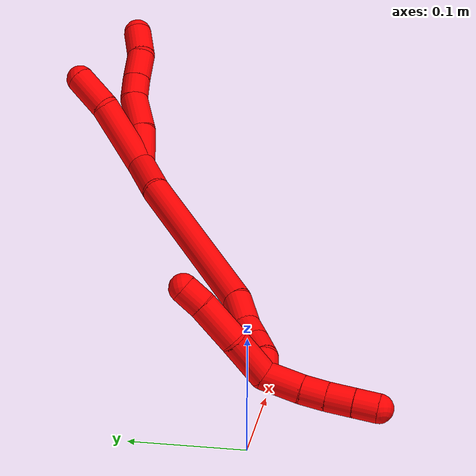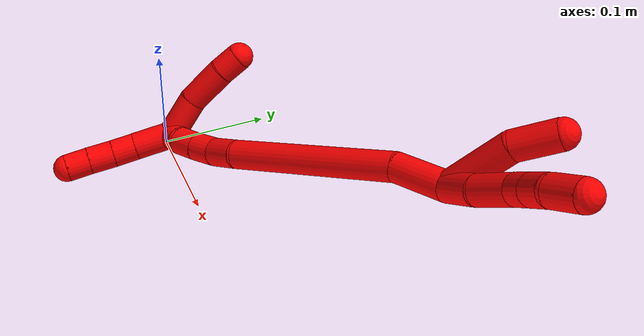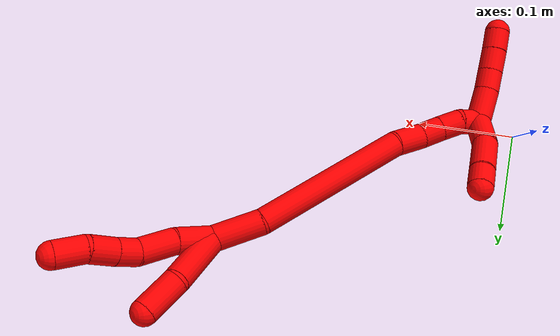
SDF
<sdf version="1.7">
 <world name="default">
  <model name="2">
   <static>0</static>
   <link name="2">
    <collision name="collision-cylinder-e_1_2_8">
     <pose>0.001226 -0.004109 0.018248 0.22151 0.065474 0.007284</pose>
     <geometry><cylinder><radius>0.0125</radius><length>0.03749</length></cylinder></geometry>
     <surface>
      <friction><ode><mu>1.16</mu><mu2>1.16</mu2><slip1>0</slip1><slip2>0</slip2></ode></friction>
      <contact><ode><kp>1e+06</kp><kd>1</kd><max_vel>0</max_vel><min_depth>0.001</min_depth></ode></contact>
     </surface>
    </collision>
    <visual name="visual-cylinder-e_1_2_8">
     <pose>0.001226 -0.004109 0.018248 0.22151 0.065474 0.007284</pose>
     <geometry><cylinder><radius>0.0125</radius><length>0.03749</length></cylinder></geometry>
     <material><ambient>1 0 0 1</ambient></material>
    </visual>
    <collision name="collision-cylinder-e_2_8_9">
     <pose>0.005566 -0.008745 0.054412 0.029361 0.171961 0.002531</pose>
     <geometry><cylinder><radius>0.0125</radius><length>0.036385</length></cylinder></geometry>
     <surface>
      <friction><ode><mu>1.16</mu><mu2>1.16</mu2><slip1>0</slip1><slip2>0</slip2></ode></friction>
      <contact><ode><kp>1e+06</kp><kd>1</kd><max_vel>0</max_vel><min_depth>0.001</min_depth></ode></contact>
     </surface>
    </collision>
    <visual name="visual-cylinder-e_2_8_9">
     <pose>0.005566 -0.008745 0.054412 0.029361 0.171961 0.002531</pose>
     <geometry><cylinder><radius>0.0125</radius><length>0.036385</length></cylinder></geometry>
     <material><ambient>1 0 0 1</ambient></material>
    </visual>
    <collision name="collision-cylinder-e_3_9_10">
     <pose>0.008095 -0.011864 0.082576 0.247822 -0.055171 -0.006873</pose>
     <geometry><cylinder><radius>0.0125</radius><length>0.021173</length></cylinder></geometry>
     <surface>
      <friction><ode><mu>1.16</mu><mu2>1.16</mu2><slip1>0</slip1><slip2>0</slip2></ode></friction>
      <contact><ode><kp>1e+06</kp><kd>1</kd><max_vel>0</max_vel><min_depth>0.001</min_depth></ode></contact>
     </surface>
    </collision>
    <visual name="visual-cylinder-e_3_9_10">
     <pose>0.008095 -0.011864 0.082576 0.247822 -0.055171 -0.006873</pose>
     <geometry><cylinder><radius>0.0125</radius><length>0.021173</length></cylinder></geometry>
     <material><ambient>1 0 0 1</ambient></material>
    </visual>
    <collision name="collision-cylinder-e_4_10_11">
     <pose>0.006132 -0.018159 0.105209 0.290406 -0.106309 -0.01556</pose>
     <geometry><cylinder><radius>0.0125</radius><length>0.026</length></cylinder></geometry>
     <surface>
      <friction><ode><mu>1.16</mu><mu2>1.16</mu2><slip1>0</slip1><slip2>0</slip2></ode></friction>
      <contact><ode><kp>1e+06</kp><kd>1</kd><max_vel>0</max_vel><min_depth>0.001</min_depth></ode></contact>
     </surface>
    </collision>
    <visual name="visual-cylinder-e_4_10_11">
     <pose>0.006132 -0.018159 0.105209 0.290406 -0.106309 -0.01556</pose>
     <geometry><cylinder><radius>0.0125</radius><length>0.026</length></cylinder></geometry>
     <material><ambient>1 0 0 1</ambient></material>
    </visual>
    <collision name="collision-cylinder-e_5_11_6">
     <pose>0.007807 -0.024048 0.131574 0.155231 0.21263 0.016599</pose>
     <geometry><cylinder><radius>0.0125</radius><length>0.028951</length></cylinder></geometry>
     <surface>
      <friction><ode><mu>1.16</mu><mu2>1.16</mu2><slip1>0</slip1><slip2>0</slip2></ode></friction>
      <contact><ode><kp>1e+06</kp><kd>1</kd><max_vel>0</max_vel><min_depth>0.001</min_depth></ode></contact>
     </surface>
    </collision>
    <visual name="visual-cylinder-e_5_11_6">
     <pose>0.007807 -0.024048 0.131574 0.155231 0.21263 0.016599</pose>
     <geometry><cylinder><radius>0.0125</radius><length>0.028951</length></cylinder></geometry>
     <material><ambient>1 0 0 1</ambient></material>
    </visual>
    <collision name="collision-cylinder-e_1_2_12">
     <pose>0.000409 0.014295 0.027411 -0.480721 0.013228 -0.003242</pose>
     <geometry><cylinder><radius>0.0125</radius><length>0.061834</length></cylinder></geometry>
     <surface>
      <friction><ode><mu>1.16</mu><mu2>1.16</mu2><slip1>0</slip1><slip2>0</slip2></ode></friction>
      <contact><ode><kp>1e+06</kp><kd>1</kd><max_vel>0</max_vel><min_depth>0.001</min_depth></ode></contact>
     </surface>
    </collision>
    <visual name="visual-cylinder-e_1_2_12">
     <pose>0.000409 0.014295 0.027411 -0.480721 0.013228 -0.003242</pose>
     <geometry><cylinder><radius>0.0125</radius><length>0.061834</length></cylinder></geometry>
     <material><ambient>1 0 0 1</ambient></material>
    </visual>
    <collision name="collision-cylinder-e_2_12_5">
     <pose>0.007098 0.035486 0.07147 -0.392677 0.335332 -0.067305</pose>
     <geometry><cylinder><radius>0.0125</radius><length>0.038166</length></cylinder></geometry>
     <surface>
      <friction><ode><mu>1.16</mu><mu2>1.16</mu2><slip1>0</slip1><slip2>0</slip2></ode></friction>
      <contact><ode><kp>1e+06</kp><kd>1</kd><max_vel>0</max_vel><min_depth>0.001</min_depth></ode></contact>
     </surface>
    </collision>
    <visual name="visual-cylinder-e_2_12_5">
     <pose>0.007098 0.035486 0.07147 -0.392677 0.335332 -0.067305</pose>
     <geometry><cylinder><radius>0.0125</radius><length>0.038166</length></cylinder></geometry>
     <material><ambient>1 0 0 1</ambient></material>
    </visual>
    <collision name="collision-cylinder-e_1_2_13">
     <pose>-0.013282 0.003238 -0.020044 -2.98145 -0.579305 2.61559</pose>
     <geometry><cylinder><radius>0.0125</radius><length>0.048524</length></cylinder></geometry>
     <surface>
      <friction><ode><mu>1.16</mu><mu2>1.16</mu2><slip1>0</slip1><slip2>0</slip2></ode></friction>
      <contact><ode><kp>1e+06</kp><kd>1</kd><max_vel>0</max_vel><min_depth>0.001</min_depth></ode></contact>
     </surface>
    </collision>
    <visual name="visual-cylinder-e_1_2_13">
     <pose>-0.013282 0.003238 -0.020044 -2.98145 -0.579305 2.61559</pose>
     <geometry><cylinder><radius>0.0125</radius><length>0.048524</length></cylinder></geometry>
     <material><ambient>1 0 0 1</ambient></material>
    </visual>
    <collision name="collision-cylinder-e_2_13_14">
     <pose>-0.062641 -0.001227 -0.108464 3.02942 -0.482903 -2.69325</pose>
     <geometry><cylinder><radius>0.0125</radius><length>0.155385</length></cylinder></geometry>
     <surface>
      <friction><ode><mu>1.16</mu><mu2>1.16</mu2><slip1>0</slip1><slip2>0</slip2></ode></friction>
      <contact><ode><kp>1e+06</kp><kd>1</kd><max_vel>0</max_vel><min_depth>0.001</min_depth></ode></contact>
     </surface>
    </collision>
    <visual name="visual-cylinder-e_2_13_14">
     <pose>-0.062641 -0.001227 -0.108464 3.02942 -0.482903 -2.69325</pose>
     <geometry><cylinder><radius>0.0125</radius><length>0.155385</length></cylinder></geometry>
     <material><ambient>1 0 0 1</ambient></material>
    </visual>
    <collision name="collision-cylinder-e_3_14_15">
     <pose>-0.103206 -0.007977 -0.191302 -3.0758 -0.300311 2.71326</pose>
     <geometry><cylinder><radius>0.0125</radius><length>0.030346</length></cylinder></geometry>
     <surface>
      <friction><ode><mu>1.16</mu><mu2>1.16</mu2><slip1>0</slip1><slip2>0</slip2></ode></friction>
      <contact><ode><kp>1e+06</kp><kd>1</kd><max_vel>0</max_vel><min_depth>0.001</min_depth></ode></contact>
     </surface>
    </collision>
    <visual name="visual-cylinder-e_3_14_15">
     <pose>-0.103206 -0.007977 -0.191302 -3.0758 -0.300311 2.71326</pose>
     <geometry><cylinder><radius>0.0125</radius><length>0.030346</length></cylinder></geometry>
     <material><ambient>1 0 0 1</ambient></material>
    </visual>
    <collision name="collision-cylinder-e_4_15_16">
     <pose>-0.113189 -0.006294 -0.21539 -3.06586 -0.517506 2.85727</pose>
     <geometry><cylinder><radius>0.0125</radius><length>0.022215</length></cylinder></geometry>
     <surface>
      <friction><ode><mu>1.16</mu><mu2>1.16</mu2><slip1>0</slip1><slip2>0</slip2></ode></friction>
      <contact><ode><kp>1e+06</kp><kd>1</kd><max_vel>0</max_vel><min_depth>0.001</min_depth></ode></contact>
     </surface>
    </collision>
    <visual name="visual-cylinder-e_4_15_16">
     <pose>-0.113189 -0.006294 -0.21539 -3.06586 -0.517506 2.85727</pose>
     <geometry><cylinder><radius>0.0125</radius><length>0.022215</length></cylinder></geometry>
     <material><ambient>1 0 0 1</ambient></material>
    </visual>
    <collision name="collision-cylinder-e_5_16_17">
     <pose>-0.124455 -0.004336 -0.234627 -3.0146 -0.537108 2.68747</pose>
     <geometry><cylinder><radius>0.0125</radius><length>0.022557</length></cylinder></geometry>
     <surface>
      <friction><ode><mu>1.16</mu><mu2>1.16</mu2><slip1>0</slip1><slip2>0</slip2></ode></friction>
      <contact><ode><kp>1e+06</kp><kd>1</kd><max_vel>0</max_vel><min_depth>0.001</min_depth></ode></contact>
     </surface>
    </collision>
    <visual name="visual-cylinder-e_5_16_17">
     <pose>-0.124455 -0.004336 -0.234627 -3.0146 -0.537108 2.68747</pose>
     <geometry><cylinder><radius>0.0125</radius><length>0.022557</length></cylinder></geometry>
     <material><ambient>1 0 0 1</ambient></material>
    </visual>
    <collision name="collision-cylinder-e_6_17_1">
     <pose>-0.132996 0.000472 -0.253698 -2.77965 -0.267397 1.26777</pose>
     <geometry><cylinder><radius>0.0125</radius><length>0.020973</length></cylinder></geometry>
     <surface>
      <friction><ode><mu>1.16</mu><mu2>1.16</mu2><slip1>0</slip1><slip2>0</slip2></ode></friction>
      <contact><ode><kp>1e+06</kp><kd>1</kd><max_vel>0</max_vel><min_depth>0.001</min_depth></ode></contact>
     </surface>
    </collision>
    <visual name="visual-cylinder-e_6_17_1">
     <pose>-0.132996 0.000472 -0.253698 -2.77965 -0.267397 1.26777</pose>
     <geometry><cylinder><radius>0.0125</radius><length>0.020973</length></cylinder></geometry>
     <material><ambient>1 0 0 1</ambient></material>
    </visual>
    <collision name="collision-cylinder-e_1_1_18">
     <pose>-0.144249 -0.00793 -0.272246 2.21967 -0.51348 -0.972555</pose>
     <geometry><cylinder><radius>0.0125</radius><length>0.034535</length></cylinder></geometry>
     <surface>
      <friction><ode><mu>1.16</mu><mu2>1.16</mu2><slip1>0</slip1><slip2>0</slip2></ode></friction>
      <contact><ode><kp>1e+06</kp><kd>1</kd><max_vel>0</max_vel><min_depth>0.001</min_depth></ode></contact>
     </surface>
    </collision>
    <visual name="visual-cylinder-e_1_1_18">
     <pose>-0.144249 -0.00793 -0.272246 2.21967 -0.51348 -0.972555</pose>
     <geometry><cylinder><radius>0.0125</radius><length>0.034535</length></cylinder></geometry>
     <material><ambient>1 0 0 1</ambient></material>
    </visual>
    <collision name="collision-cylinder-e_2_18_19">
     <pose>-0.158117 -0.027788 -0.286094 2.1145 -0.529623 -0.896332</pose>
     <geometry><cylinder><radius>0.0125</radius><length>0.021322</length></cylinder></geometry>
     <surface>
      <friction><ode><mu>1.16</mu><mu2>1.16</mu2><slip1>0</slip1><slip2>0</slip2></ode></friction>
      <contact><ode><kp>1e+06</kp><kd>1</kd><max_vel>0</max_vel><min_depth>0.001</min_depth></ode></contact>
     </surface>
    </collision>
    <visual name="visual-cylinder-e_2_18_19">
     <pose>-0.158117 -0.027788 -0.286094 2.1145 -0.529623 -0.896332</pose>
     <geometry><cylinder><radius>0.0125</radius><length>0.021322</length></cylinder></geometry>
     <material><ambient>1 0 0 1</ambient></material>
    </visual>
    <collision name="collision-cylinder-e_3_19_20">
     <pose>-0.169741 -0.044109 -0.295548 2.07797 -0.573147 -0.928679</pose>
     <geometry><cylinder><radius>0.0125</radius><length>0.023003</length></cylinder></geometry>
     <surface>
      <friction><ode><mu>1.16</mu><mu2>1.16</mu2><slip1>0</slip1><slip2>0</slip2></ode></friction>
      <contact><ode><kp>1e+06</kp><kd>1</kd><max_vel>0</max_vel><min_depth>0.001</min_depth></ode></contact>
     </surface>
    </collision>
    <visual name="visual-cylinder-e_3_19_20">
     <pose>-0.169741 -0.044109 -0.295548 2.07797 -0.573147 -0.928679</pose>
     <geometry><cylinder><radius>0.0125</radius><length>0.023003</length></cylinder></geometry>
     <material><ambient>1 0 0 1</ambient></material>
    </visual>
    <collision name="collision-cylinder-e_4_20_4">
     <pose>-0.181459 -0.060557 -0.304443 2.05433 -0.545165 -0.866444</pose>
     <geometry><cylinder><radius>0.0125</radius><length>0.02114</length></cylinder></geometry>
     <surface>
      <friction><ode><mu>1.16</mu><mu2>1.16</mu2><slip1>0</slip1><slip2>0</slip2></ode></friction>
      <contact><ode><kp>1e+06</kp><kd>1</kd><max_vel>0</max_vel><min_depth>0.001</min_depth></ode></contact>
     </surface>
    </collision>
    <visual name="visual-cylinder-e_4_20_4">
     <pose>-0.181459 -0.060557 -0.304443 2.05433 -0.545165 -0.866444</pose>
     <geometry><cylinder><radius>0.0125</radius><length>0.02114</length></cylinder></geometry>
     <material><ambient>1 0 0 1</ambient></material>
    </visual>
    <collision name="collision-cylinder-e_1_1_21">
     <pose>-0.139848 0.018902 -0.250678 -0.871882 -0.20738 0.096876</pose>
     <geometry><cylinder><radius>0.0125</radius><length>0.039641</length></cylinder></geometry>
     <surface>
      <friction><ode><mu>1.16</mu><mu2>1.16</mu2><slip1>0</slip1><slip2>0</slip2></ode></friction>
      <contact><ode><kp>1e+06</kp><kd>1</kd><max_vel>0</max_vel><min_depth>0.001</min_depth></ode></contact>
     </surface>
    </collision>
    <visual name="visual-cylinder-e_1_1_21">
     <pose>-0.139848 0.018902 -0.250678 -0.871882 -0.20738 0.096876</pose>
     <geometry><cylinder><radius>0.0125</radius><length>0.039641</length></cylinder></geometry>
     <material><ambient>1 0 0 1</ambient></material>
    </visual>
    <collision name="collision-cylinder-e_2_21_22">
     <pose>-0.144131 0.046752 -0.223516 -0.724736 -0.010312 0.003909</pose>
     <geometry><cylinder><radius>0.0125</radius><length>0.039226</length></cylinder></geometry>
     <surface>
      <friction><ode><mu>1.16</mu><mu2>1.16</mu2><slip1>0</slip1><slip2>0</slip2></ode></friction>
      <contact><ode><kp>1e+06</kp><kd>1</kd><max_vel>0</max_vel><min_depth>0.001</min_depth></ode></contact>
     </surface>
    </collision>
    <visual name="visual-cylinder-e_2_21_22">
     <pose>-0.144131 0.046752 -0.223516 -0.724736 -0.010312 0.003909</pose>
     <geometry><cylinder><radius>0.0125</radius><length>0.039226</length></cylinder></geometry>
     <material><ambient>1 0 0 1</ambient></material>
    </visual>
    <collision name="collision-cylinder-e_3_22_3">
     <pose>-0.143367 0.06721 -0.201409 -0.787637 0.091628 -0.038096</pose>
     <geometry><cylinder><radius>0.0125</radius><length>0.021133</length></cylinder></geometry>
     <surface>
      <friction><ode><mu>1.16</mu><mu2>1.16</mu2><slip1>0</slip1><slip2>0</slip2></ode></friction>
      <contact><ode><kp>1e+06</kp><kd>1</kd><max_vel>0</max_vel><min_depth>0.001</min_depth></ode></contact>
     </surface>
    </collision>
    <visual name="visual-cylinder-e_3_22_3">
     <pose>-0.143367 0.06721 -0.201409 -0.787637 0.091628 -0.038096</pose>
     <geometry><cylinder><radius>0.0125</radius><length>0.021133</length></cylinder></geometry>
     <material><ambient>1 0 0 1</ambient></material>
    </visual>
    <collision name="collision-sphere-3">
     <pose>-0.1424 0.074667 -0.193986 0 -0 0</pose>
     <geometry><sphere><radius>0.0125</radius></sphere></geometry>
     <surface>
      <friction><ode><mu>1.16</mu><mu2>1.16</mu2><slip1>0</slip1><slip2>0</slip2></ode></friction>
      <contact><ode><kp>1e+06</kp><kd>1</kd><max_vel>0</max_vel><min_depth>0.001</min_depth></ode></contact>
     </surface>
    </collision>
    <visual name="visual-sphere-3">
     <pose>-0.1424 0.074667 -0.193986 0 -0 0</pose>
     <geometry><sphere><radius>0.0125</radius></sphere></geometry>
     <material><ambient>1 0 0 1</ambient></material>
    </visual>
    <collision name="collision-sphere-22">
     <pose>-0.144334 0.059753 -0.208833 0 -0 0</pose>
     <geometry><sphere><radius>0.0125</radius></sphere></geometry>
     <surface>
      <friction><ode><mu>1.16</mu><mu2>1.16</mu2><slip1>0</slip1><slip2>0</slip2></ode></friction>
      <contact><ode><kp>1e+06</kp><kd>1</kd><max_vel>0</max_vel><min_depth>0.001</min_depth></ode></contact>
     </surface>
    </collision>
    <visual name="visual-sphere-22">
     <pose>-0.144334 0.059753 -0.208833 0 -0 0</pose>
     <geometry><sphere><radius>0.0125</radius></sphere></geometry>
     <material><ambient>1 0 0 1</ambient></material>
    </visual>
    <collision name="collision-sphere-21">
     <pose>-0.143929 0.03375 -0.238199 0 -0 0</pose>
     <geometry><sphere><radius>0.0125</radius></sphere></geometry>
     <surface>
      <friction><ode><mu>1.16</mu><mu2>1.16</mu2><slip1>0</slip1><slip2>0</slip2></ode></friction>
      <contact><ode><kp>1e+06</kp><kd>1</kd><max_vel>0</max_vel><min_depth>0.001</min_depth></ode></contact>
     </surface>
    </collision>
    <visual name="visual-sphere-21">
     <pose>-0.143929 0.03375 -0.238199 0 -0 0</pose>
     <geometry><sphere><radius>0.0125</radius></sphere></geometry>
     <material><ambient>1 0 0 1</ambient></material>
    </visual>
    <collision name="collision-sphere-4">
     <pose>-0.18694 -0.068559 -0.308645 0 -0 0</pose>
     <geometry><sphere><radius>0.0125</radius></sphere></geometry>
     <surface>
      <friction><ode><mu>1.16</mu><mu2>1.16</mu2><slip1>0</slip1><slip2>0</slip2></ode></friction>
      <contact><ode><kp>1e+06</kp><kd>1</kd><max_vel>0</max_vel><min_depth>0.001</min_depth></ode></contact>
     </surface>
    </collision>
    <visual name="visual-sphere-4">
     <pose>-0.18694 -0.068559 -0.308645 0 -0 0</pose>
     <geometry><sphere><radius>0.0125</radius></sphere></geometry>
     <material><ambient>1 0 0 1</ambient></material>
    </visual>
    <collision name="collision-sphere-20">
     <pose>-0.175977 -0.052556 -0.300241 0 -0 0</pose>
     <geometry><sphere><radius>0.0125</radius></sphere></geometry>
     <surface>
      <friction><ode><mu>1.16</mu><mu2>1.16</mu2><slip1>0</slip1><slip2>0</slip2></ode></friction>
      <contact><ode><kp>1e+06</kp><kd>1</kd><max_vel>0</max_vel><min_depth>0.001</min_depth></ode></contact>
     </surface>
    </collision>
    <visual name="visual-sphere-20">
     <pose>-0.175977 -0.052556 -0.300241 0 -0 0</pose>
     <geometry><sphere><radius>0.0125</radius></sphere></geometry>
     <material><ambient>1 0 0 1</ambient></material>
    </visual>
    <collision name="collision-sphere-6">
     <pose>0.010862 -0.026235 0.145554 0 -0 0</pose>
     <geometry><sphere><radius>0.0125</radius></sphere></geometry>
     <surface>
      <friction><ode><mu>1.16</mu><mu2>1.16</mu2><slip1>0</slip1><slip2>0</slip2></ode></friction>
      <contact><ode><kp>1e+06</kp><kd>1</kd><max_vel>0</max_vel><min_depth>0.001</min_depth></ode></contact>
     </surface>
    </collision>
    <visual name="visual-sphere-6">
     <pose>0.010862 -0.026235 0.145554 0 -0 0</pose>
     <geometry><sphere><radius>0.0125</radius></sphere></geometry>
     <material><ambient>1 0 0 1</ambient></material>
    </visual>
    <collision name="collision-sphere-11">
     <pose>0.004752 -0.02186 0.117595 0 -0 0</pose>
     <geometry><sphere><radius>0.0125</radius></sphere></geometry>
     <surface>
      <friction><ode><mu>1.16</mu><mu2>1.16</mu2><slip1>0</slip1><slip2>0</slip2></ode></friction>
      <contact><ode><kp>1e+06</kp><kd>1</kd><max_vel>0</max_vel><min_depth>0.001</min_depth></ode></contact>
     </surface>
    </collision>
    <visual name="visual-sphere-11">
     <pose>0.004752 -0.02186 0.117595 0 -0 0</pose>
     <geometry><sphere><radius>0.0125</radius></sphere></geometry>
     <material><ambient>1 0 0 1</ambient></material>
    </visual>
    <collision name="collision-sphere-10">
     <pose>0.007511 -0.014457 0.092824 0 -0 0</pose>
     <geometry><sphere><radius>0.0125</radius></sphere></geometry>
     <surface>
      <friction><ode><mu>1.16</mu><mu2>1.16</mu2><slip1>0</slip1><slip2>0</slip2></ode></friction>
      <contact><ode><kp>1e+06</kp><kd>1</kd><max_vel>0</max_vel><min_depth>0.001</min_depth></ode></contact>
     </surface>
    </collision>
    <visual name="visual-sphere-10">
     <pose>0.007511 -0.014457 0.092824 0 -0 0</pose>
     <geometry><sphere><radius>0.0125</radius></sphere></geometry>
     <material><ambient>1 0 0 1</ambient></material>
    </visual>
    <collision name="collision-sphere-9">
     <pose>0.008679 -0.009271 0.072328 0 -0 0</pose>
     <geometry><sphere><radius>0.0125</radius></sphere></geometry>
     <surface>
      <friction><ode><mu>1.16</mu><mu2>1.16</mu2><slip1>0</slip1><slip2>0</slip2></ode></friction>
      <contact><ode><kp>1e+06</kp><kd>1</kd><max_vel>0</max_vel><min_depth>0.001</min_depth></ode></contact>
     </surface>
    </collision>
    <visual name="visual-sphere-9">
     <pose>0.008679 -0.009271 0.072328 0 -0 0</pose>
     <geometry><sphere><radius>0.0125</radius></sphere></geometry>
     <material><ambient>1 0 0 1</ambient></material>
    </visual>
    <collision name="collision-sphere-2">
     <geometry><sphere><radius>0.0125</radius></sphere></geometry>
     <surface>
      <friction><ode><mu>1.16</mu><mu2>1.16</mu2><slip1>0</slip1><slip2>0</slip2></ode></friction>
      <contact><ode><kp>1e+06</kp><kd>1</kd><max_vel>0</max_vel><min_depth>0.001</min_depth></ode></contact>
     </surface>
    </collision>
    <visual name="visual-sphere-2">
     <geometry><sphere><radius>0.0125</radius></sphere></geometry>
     <material><ambient>1 0 0 1</ambient></material>
    </visual>
    <collision name="collision-sphere-19">
     <pose>-0.163504 -0.035662 -0.290854 0 -0 0</pose>
     <geometry><sphere><radius>0.0125</radius></sphere></geometry>
     <surface>
      <friction><ode><mu>1.16</mu><mu2>1.16</mu2><slip1>0</slip1><slip2>0</slip2></ode></friction>
      <contact><ode><kp>1e+06</kp><kd>1</kd><max_vel>0</max_vel><min_depth>0.001</min_depth></ode></contact>
     </surface>
    </collision>
    <visual name="visual-sphere-19">
     <pose>-0.163504 -0.035662 -0.290854 0 -0 0</pose>
     <geometry><sphere><radius>0.0125</radius></sphere></geometry>
     <material><ambient>1 0 0 1</ambient></material>
    </visual>
    <collision name="collision-sphere-8">
     <pose>0.002453 -0.008219 0.036495 0 -0 0</pose>
     <geometry><sphere><radius>0.0125</radius></sphere></geometry>
     <surface>
      <friction><ode><mu>1.16</mu><mu2>1.16</mu2><slip1>0</slip1><slip2>0</slip2></ode></friction>
      <contact><ode><kp>1e+06</kp><kd>1</kd><max_vel>0</max_vel><min_depth>0.001</min_depth></ode></contact>
     </surface>
    </collision>
    <visual name="visual-sphere-8">
     <pose>0.002453 -0.008219 0.036495 0 -0 0</pose>
     <geometry><sphere><radius>0.0125</radius></sphere></geometry>
     <material><ambient>1 0 0 1</ambient></material>
    </visual>
    <collision name="collision-sphere-12">
     <pose>0.000818 0.028591 0.054821 0 -0 0</pose>
     <geometry><sphere><radius>0.0125</radius></sphere></geometry>
     <surface>
      <friction><ode><mu>1.16</mu><mu2>1.16</mu2><slip1>0</slip1><slip2>0</slip2></ode></friction>
      <contact><ode><kp>1e+06</kp><kd>1</kd><max_vel>0</max_vel><min_depth>0.001</min_depth></ode></contact>
     </surface>
    </collision>
    <visual name="visual-sphere-12">
     <pose>0.000818 0.028591 0.054821 0 -0 0</pose>
     <geometry><sphere><radius>0.0125</radius></sphere></geometry>
     <material><ambient>1 0 0 1</ambient></material>
    </visual>
    <collision name="collision-sphere-5">
     <pose>0.013378 0.042382 0.088118 0 -0 0</pose>
     <geometry><sphere><radius>0.0125</radius></sphere></geometry>
     <surface>
      <friction><ode><mu>1.16</mu><mu2>1.16</mu2><slip1>0</slip1><slip2>0</slip2></ode></friction>
      <contact><ode><kp>1e+06</kp><kd>1</kd><max_vel>0</max_vel><min_depth>0.001</min_depth></ode></contact>
     </surface>
    </collision>
    <visual name="visual-sphere-5">
     <pose>0.013378 0.042382 0.088118 0 -0 0</pose>
     <geometry><sphere><radius>0.0125</radius></sphere></geometry>
     <material><ambient>1 0 0 1</ambient></material>
    </visual>
    <collision name="collision-sphere-13">
     <pose>-0.026564 0.006475 -0.040088 0 -0 0</pose>
     <geometry><sphere><radius>0.0125</radius></sphere></geometry>
     <surface>
      <friction><ode><mu>1.16</mu><mu2>1.16</mu2><slip1>0</slip1><slip2>0</slip2></ode></friction>
      <contact><ode><kp>1e+06</kp><kd>1</kd><max_vel>0</max_vel><min_depth>0.001</min_depth></ode></contact>
     </surface>
    </collision>
    <visual name="visual-sphere-13">
     <pose>-0.026564 0.006475 -0.040088 0 -0 0</pose>
     <geometry><sphere><radius>0.0125</radius></sphere></geometry>
     <material><ambient>1 0 0 1</ambient></material>
    </visual>
    <collision name="collision-sphere-14">
     <pose>-0.098718 -0.00893 -0.17684 0 -0 0</pose>
     <geometry><sphere><radius>0.0125</radius></sphere></geometry>
     <surface>
      <friction><ode><mu>1.16</mu><mu2>1.16</mu2><slip1>0</slip1><slip2>0</slip2></ode></friction>
      <contact><ode><kp>1e+06</kp><kd>1</kd><max_vel>0</max_vel><min_depth>0.001</min_depth></ode></contact>
     </surface>
    </collision>
    <visual name="visual-sphere-14">
     <pose>-0.098718 -0.00893 -0.17684 0 -0 0</pose>
     <geometry><sphere><radius>0.0125</radius></sphere></geometry>
     <material><ambient>1 0 0 1</ambient></material>
    </visual>
    <collision name="collision-sphere-15">
     <pose>-0.107694 -0.007024 -0.205765 0 -0 0</pose>
     <geometry><sphere><radius>0.0125</radius></sphere></geometry>
     <surface>
      <friction><ode><mu>1.16</mu><mu2>1.16</mu2><slip1>0</slip1><slip2>0</slip2></ode></friction>
      <contact><ode><kp>1e+06</kp><kd>1</kd><max_vel>0</max_vel><min_depth>0.001</min_depth></ode></contact>
     </surface>
    </collision>
    <visual name="visual-sphere-15">
     <pose>-0.107694 -0.007024 -0.205765 0 -0 0</pose>
     <geometry><sphere><radius>0.0125</radius></sphere></geometry>
     <material><ambient>1 0 0 1</ambient></material>
    </visual>
    <collision name="collision-sphere-16">
     <pose>-0.118685 -0.005564 -0.225015 0 -0 0</pose>
     <geometry><sphere><radius>0.0125</radius></sphere></geometry>
     <surface>
      <friction><ode><mu>1.16</mu><mu2>1.16</mu2><slip1>0</slip1><slip2>0</slip2></ode></friction>
      <contact><ode><kp>1e+06</kp><kd>1</kd><max_vel>0</max_vel><min_depth>0.001</min_depth></ode></contact>
     </surface>
    </collision>
    <visual name="visual-sphere-16">
     <pose>-0.118685 -0.005564 -0.225015 0 -0 0</pose>
     <geometry><sphere><radius>0.0125</radius></sphere></geometry>
     <material><ambient>1 0 0 1</ambient></material>
    </visual>
    <collision name="collision-sphere-17">
     <pose>-0.130226 -0.003109 -0.24424 0 -0 0</pose>
     <geometry><sphere><radius>0.0125</radius></sphere></geometry>
     <surface>
      <friction><ode><mu>1.16</mu><mu2>1.16</mu2><slip1>0</slip1><slip2>0</slip2></ode></friction>
      <contact><ode><kp>1e+06</kp><kd>1</kd><max_vel>0</max_vel><min_depth>0.001</min_depth></ode></contact>
     </surface>
    </collision>
    <visual name="visual-sphere-17">
     <pose>-0.130226 -0.003109 -0.24424 0 -0 0</pose>
     <geometry><sphere><radius>0.0125</radius></sphere></geometry>
     <material><ambient>1 0 0 1</ambient></material>
    </visual>
    <collision name="collision-sphere-1">
     <pose>-0.135767 0.004054 -0.263157 0 -0 0</pose>
     <geometry><sphere><radius>0.0125</radius></sphere></geometry>
     <surface>
      <friction><ode><mu>1.16</mu><mu2>1.16</mu2><slip1>0</slip1><slip2>0</slip2></ode></friction>
      <contact><ode><kp>1e+06</kp><kd>1</kd><max_vel>0</max_vel><min_depth>0.001</min_depth></ode></contact>
     </surface>
    </collision>
    <visual name="visual-sphere-1">
     <pose>-0.135767 0.004054 -0.263157 0 -0 0</pose>
     <geometry><sphere><radius>0.0125</radius></sphere></geometry>
     <material><ambient>1 0 0 1</ambient></material>
    </visual>
    <collision name="collision-sphere-18">
     <pose>-0.152731 -0.019914 -0.281335 0 -0 0</pose>
     <geometry><sphere><radius>0.0125</radius></sphere></geometry>
     <surface>
      <friction><ode><mu>1.16</mu><mu2>1.16</mu2><slip1>0</slip1><slip2>0</slip2></ode></friction>
      <contact><ode><kp>1e+06</kp><kd>1</kd><max_vel>0</max_vel><min_depth>0.001</min_depth></ode></contact>
     </surface>
    </collision>
    <visual name="visual-sphere-18">
     <pose>-0.152731 -0.019914 -0.281335 0 -0 0</pose>
     <geometry><sphere><radius>0.0125</radius></sphere></geometry>
     <material><ambient>1 0 0 1</ambient></material>
    </visual>
    <inertial>
     <pose>-0.067787 0.000914 -0.100464 0 -0 0</pose>
     <mass>0.75</mass>
     <inertia>
      <ixx>-0.000336</ixx>
      <ixy>0</ixy>
      <ixz>0</ixz>
      <iyy>0.000245</iyy>
      <iyz>0</iyz>
      <izz>0.000176</izz>
     </inertia>
    </inertial>
   </link>
   <pose>0.28763 0.142986 0.133284 0.409892 0.735989 0.948273</pose>
  </model>
 </world>
</sdf>
